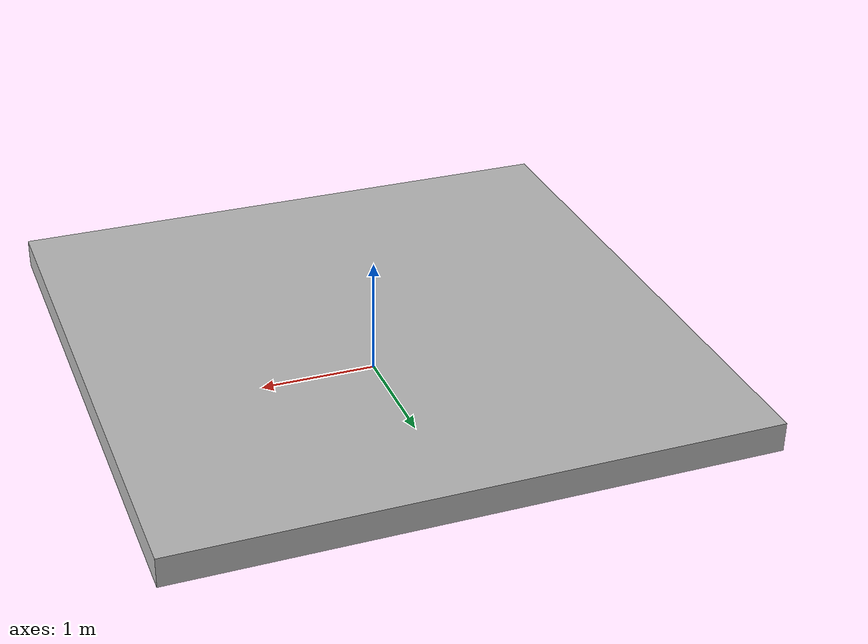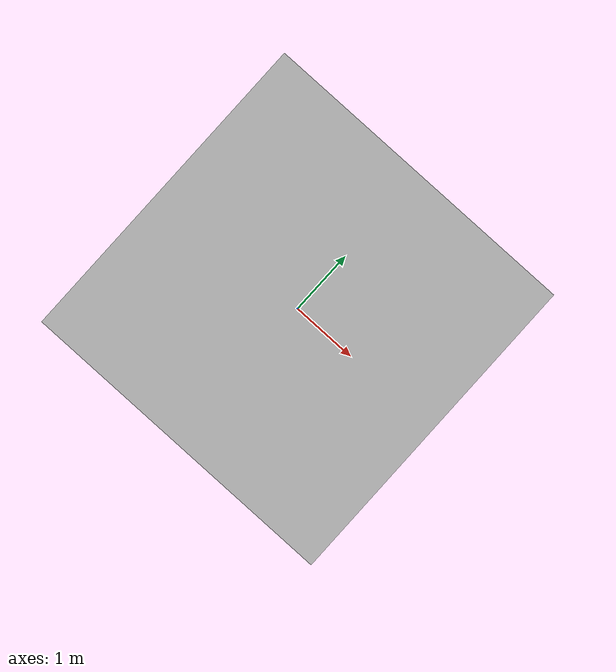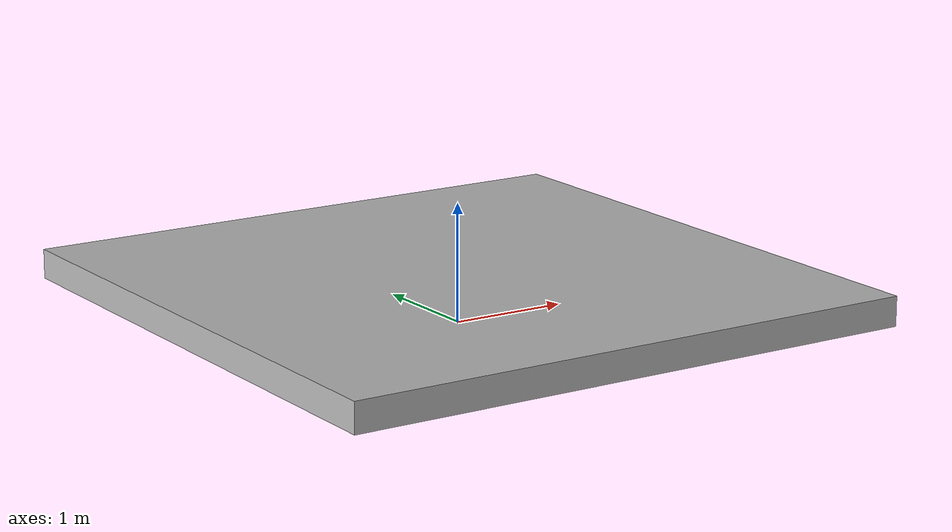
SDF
<?xml version="1.0"?>
<sdf version="1.5">
  <model name="ground_sensor">
	  <static>1</static>
    <link name="link">
      <pose>0 0 0.3 0 0 0</pose>

      <collision name="ground_collision">
        <geometry>
          <box>
            <size>5 5 0.25</size>
          </box>
        </geometry>
      </collision>

      <visual name="visual">
        <geometry>
          <box>
            <size>5 5 0.25</size>
          </box>
        </geometry>
      </visual>

      <sensor name='bumpercontact' type='contact'>
	<update_rate>1000.0</update_rate>
        <contact>
          <collision>ground_collision</collision>
        </contact>
	<plugin name="gazebo_ros_bumper_controller" filename="libgazebo_ros_bumper.so">
	  <alwaysOn>true</alwaysOn>
	  <update_rate>1000.0</update_rate>
	  <bumperTopicName>/ground_contact_topic</bumperTopicName>
	  <frameName>world</frameName>
	</plugin>
      </sensor>
    </link>
  </model>
</sdf>
